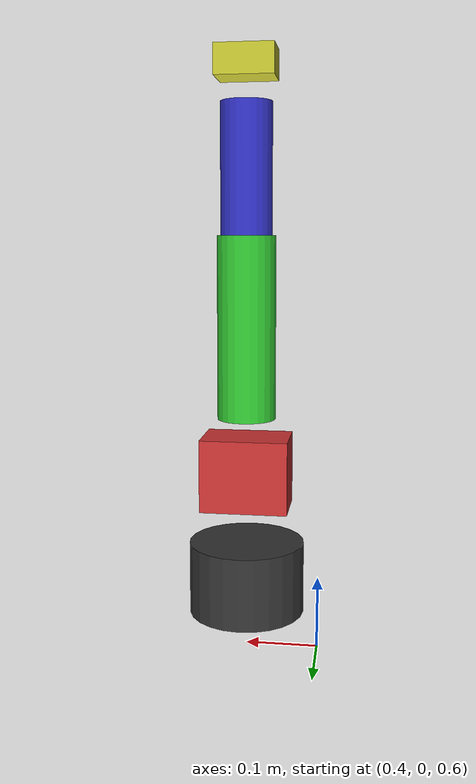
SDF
<?xml version="1.0" ?>
<sdf version="1.7">
  <model name="dofbot_pro">
    <pose>0.5 0 0.7 0 0 0</pose>
    <static>false</static>

    <!-- 底座 -->
    <link name="base_link">
      <pose>0 0 0 0 0 0</pose>
      <inertial>
        <mass>2.5</mass>
        <inertia>
          <ixx>0.01</ixx>
          <iyy>0.01</iyy>
          <izz>0.02</izz>
        </inertia>
      </inertial>
      <visual name="visual">
        <geometry>
          <cylinder>
            <radius>0.08</radius>
            <length>0.1</length>
          </cylinder>
        </geometry>
        <material>
          <diffuse>0.2 0.2 0.2 1</diffuse>
          <specular>0.8 0.8 0.8 1</specular>
        </material>
      </visual>
      <collision name="collision">
        <geometry>
          <cylinder>
            <radius>0.08</radius>
            <length>0.1</length>
          </cylinder>
        </geometry>
      </collision>
    </link>

    <!-- 关节1 - 底座旋转 -->
    <link name="shoulder_link">
      <pose>0 0 0.15 0 0 0</pose>
      <inertial>
        <mass>1.5</mass>
        <inertia>
          <ixx>0.008</ixx>
          <iyy>0.008</iyy>
          <izz>0.015</izz>
        </inertia>
      </inertial>
      <visual name="visual">
        <geometry>
          <box>
            <size>0.12 0.08 0.1</size>
          </box>
        </geometry>
        <material>
          <diffuse>0.8 0.2 0.2 1</diffuse>
          <specular>0.8 0.8 0.8 1</specular>
        </material>
      </visual>
      <collision name="collision">
        <geometry>
          <box>
            <size>0.12 0.08 0.1</size>
          </box>
        </geometry>
      </collision>
    </link>

    <!-- 关节2 - 大臂 -->
    <link name="upper_arm_link">
      <pose>0 0 0.35 0 0 0</pose>
      <inertial>
        <mass>1.0</mass>
        <inertia>
          <ixx>0.006</ixx>
          <iyy>0.006</iyy>
          <izz>0.01</izz>
        </inertia>
      </inertial>
      <visual name="visual">
        <geometry>
          <cylinder>
            <radius>0.04</radius>
            <length>0.25</length>
          </cylinder>
        </geometry>
        <material>
          <diffuse>0.2 0.8 0.2 1</diffuse>
          <specular>0.8 0.8 0.8 1</specular>
        </material>
      </visual>
      <collision name="collision">
        <geometry>
          <cylinder>
            <radius>0.04</radius>
            <length>0.25</length>
          </cylinder>
        </geometry>
      </collision>
    </link>

    <!-- 关节3 - 小臂 -->
    <link name="forearm_link">
      <pose>0 0 0.55 0 0 0</pose>
      <inertial>
        <mass>0.8</mass>
        <inertia>
          <ixx>0.004</ixx>
          <iyy>0.004</iyy>
          <izz>0.008</izz>
        </inertia>
      </inertial>
      <visual name="visual">
        <geometry>
          <cylinder>
            <radius>0.035</radius>
            <length>0.2</length>
          </cylinder>
        </geometry>
        <material>
          <diffuse>0.2 0.2 0.8 1</diffuse>
          <specular>0.8 0.8 0.8 1</specular>
        </material>
      </visual>
      <collision name="collision">
        <geometry>
          <cylinder>
            <radius>0.035</radius>
            <length>0.2</length>
          </cylinder>
        </geometry>
      </collision>
    </link>

    <!-- 末端执行器 -->
    <link name="end_effector_link">
      <pose>0 0 0.7 0 0 0</pose>
      <inertial>
        <mass>0.3</mass>
        <inertia>
          <ixx>0.001</ixx>
          <iyy>0.001</iyy>
          <izz>0.002</izz>
        </inertia>
      </inertial>
      <visual name="visual">
        <geometry>
          <box>
            <size>0.08 0.06 0.04</size>
          </box>
        </geometry>
        <material>
          <diffuse>0.8 0.8 0.2 1</diffuse>
          <specular>0.8 0.8 0.8 1</specular>
        </material>
      </visual>
      <collision name="collision">
        <geometry>
          <box>
            <size>0.08 0.06 0.04</size>
          </box>
        </geometry>
      </collision>
    </link>

    <!-- 关节定义 -->
    <joint name="base_to_shoulder" type="revolute">
      <parent>base_link</parent>
      <child>shoulder_link</child>
      <axis>
        <xyz>0 0 1</xyz>
        <limit>
          <lower>-3.14159</lower>
          <upper>3.14159</upper>
          <effort>50</effort>
          <velocity>2.0</velocity>
        </limit>
        <dynamics>
          <damping>0.5</damping>
          <friction>0.1</friction>
        </dynamics>
      </axis>
    </joint>

    <joint name="shoulder_to_upper_arm" type="revolute">
      <parent>shoulder_link</parent>
      <child>upper_arm_link</child>
      <axis>
        <xyz>0 1 0</xyz>
        <limit>
          <lower>-1.57</lower>
          <upper>1.57</upper>
          <effort>50</effort>
          <velocity>2.0</velocity>
        </limit>
        <dynamics>
          <damping>0.5</damping>
          <friction>0.1</friction>
        </dynamics>
      </axis>
    </joint>

    <joint name="upper_arm_to_forearm" type="revolute">
      <parent>upper_arm_link</parent>
      <child>forearm_link</child>
      <axis>
        <xyz>0 1 0</xyz>
        <limit>
          <lower>-2.5</lower>
          <upper>2.5</upper>
          <effort>30</effort>
          <velocity>2.0</velocity>
        </limit>
        <dynamics>
          <damping>0.3</damping>
          <friction>0.1</friction>
        </dynamics>
      </axis>
    </joint>

    <joint name="forearm_to_end_effector" type="revolute">
      <parent>forearm_link</parent>
      <child>end_effector_link</child>
      <axis>
        <xyz>0 0 1</xyz>
        <limit>
          <lower>-3.14159</lower>
          <upper>3.14159</upper>
          <effort>20</effort>
          <velocity>3.0</velocity>
        </limit>
        <dynamics>
          <damping>0.2</damping>
          <friction>0.05</friction>
        </dynamics>
      </axis>
    </joint>

    <!-- Gazebo插件 -->
    <plugin filename="gz-sim-joint-state-publisher-system" name="gz::sim::systems::JointStatePublisher">
      <topic>/dofbot_pro/joint_states</topic>
    </plugin>

    <plugin filename="gz-sim-joint-position-controller-system" name="gz::sim::systems::JointPositionController">
      <joint_name>base_to_shoulder</joint_name>
      <joint_name>shoulder_to_upper_arm</joint_name>
      <joint_name>upper_arm_to_forearm</joint_name>
      <joint_name>forearm_to_end_effector</joint_name>
      <topic>/dofbot_pro/joint_commands</topic>
    </plugin>

  </model>
</sdf>
